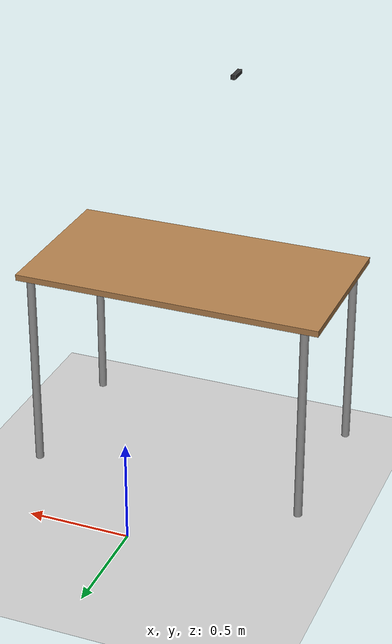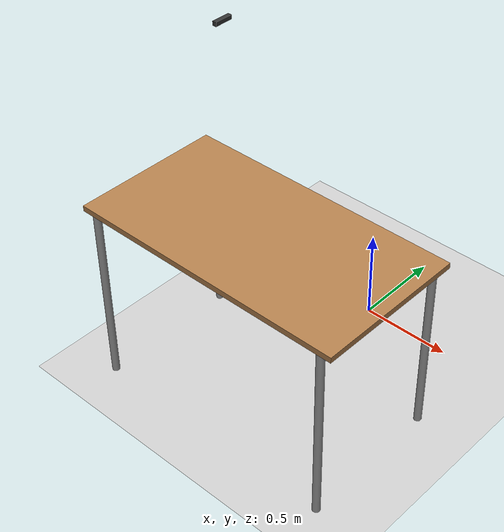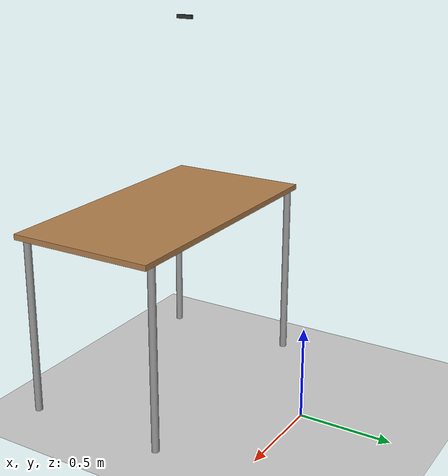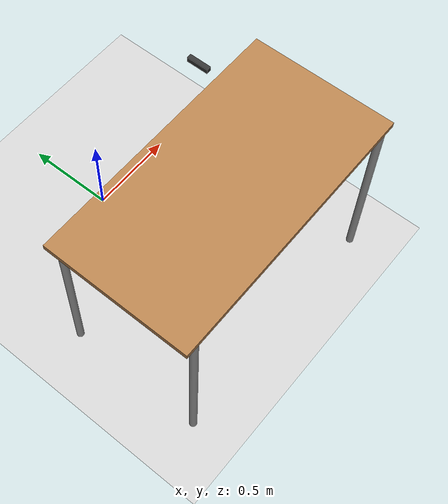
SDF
<?xml version="1.0" ?>
<sdf version="1.4">
  <world name="default">
    <include>
      <uri>model://ground_plane</uri>
    </include>
    <include>
      <uri>model://sun</uri>
    </include>
    <include>
      <uri>model://table</uri>
      <name>table</name>
      <pose>0.0 -0.84 0 0 0 0</pose>
    </include>

    <!-- RealSense D435i camera -->
    <model name="realsense_camera">
      <static>true</static>
      <pose>-0.2 -0.84 2.0 0 1.5708 0</pose>
      <link name="camera_link">
        <visual name="visual">
          <geometry>
            <box>
              <size>0.02 0.09 0.02</size>
            </box>
          </geometry>
          <material>
            <ambient>0.2 0.2 0.2 1</ambient>
            <diffuse>0.2 0.2 0.2 1</diffuse>
          </material>
        </visual>

        <!-- Depth Camera -->
        <sensor name="cameradepth" type="depth">
          <camera name="camera">
            <horizontal_fov>1.57</horizontal_fov>
            <image>
              <width>1280</width>
              <height>720</height>
            </image>
            <clip>
              <near>0.1</near>
              <far>100</far>
            </clip>
            <noise>
              <type>gaussian</type>
              <mean>0.0</mean>
              <stddev>0.100</stddev>
            </noise>
          </camera>
          <always_on>1</always_on>
          <update_rate>30</update_rate>
          <visualize>0</visualize>
        </sensor>

        <!-- Color Camera -->
        <sensor name="cameracolor" type="camera">
          <camera name="camera">
            <horizontal_fov>1.57</horizontal_fov>
            <image>
              <width>1280</width>
              <height>720</height>
              <format>RGB_INT8</format>
            </image>
            <clip>
              <near>0.1</near>
              <far>100</far>
            </clip>
            <noise>
              <type>gaussian</type>
              <mean>0.0</mean>
              <stddev>0.007</stddev>
            </noise>
          </camera>
          <always_on>1</always_on>
          <update_rate>30</update_rate>
          <visualize>1</visualize>
        </sensor>

        <!-- Left IR Camera -->
        <sensor name="cameraired1" type="camera">
          <camera name="camera">
            <horizontal_fov>1.57</horizontal_fov>
            <image>
              <width>1280</width>
              <height>720</height>
              <format>L_INT8</format>
            </image>
            <clip>
              <near>0.1</near>
              <far>100</far>
            </clip>
            <noise>
              <type>gaussian</type>
              <mean>0.0</mean>
              <stddev>0.05</stddev>
            </noise>
          </camera>
          <always_on>1</always_on>
          <update_rate>30</update_rate>
          <visualize>0</visualize>
        </sensor>

        <!-- Right IR Camera -->
        <sensor name="cameraired2" type="camera">
          <camera name="camera">
            <horizontal_fov>1.57</horizontal_fov>
            <image>
              <width>1280</width>
              <height>720</height>
              <format>L_INT8</format>
            </image>
            <clip>
              <near>0.1</near>
              <far>100</far>
            </clip>
            <noise>
              <type>gaussian</type>
              <mean>0.0</mean>
              <stddev>0.05</stddev>
            </noise>
          </camera>
          <always_on>1</always_on>
          <update_rate>30</update_rate>
          <visualize>0</visualize>
        </sensor>

        <!-- RealSense Plugin -->
        <plugin name="realsense_gazebo_camera" filename="librealsense_gazebo_plugin.so">
          <prefix>camera</prefix>
          <depthUpdateRate>30.0</depthUpdateRate>
          <colorUpdateRate>30.0</colorUpdateRate>
          <infraredUpdateRate>30.0</infraredUpdateRate>
          <depthTopicName>aligned_depth_to_color/image_raw</depthTopicName>
          <depthCameraInfoTopicName>depth/camera_info</depthCameraInfoTopicName>
          <colorTopicName>color/image_raw</colorTopicName>
          <colorCameraInfoTopicName>color/camera_info</colorCameraInfoTopicName>
          <infrared1TopicName>infra1/image_raw</infrared1TopicName>
          <infrared1CameraInfoTopicName>infra1/camera_info</infrared1CameraInfoTopicName>
          <infrared2TopicName>infra2/image_raw</infrared2TopicName>
          <infrared2CameraInfoTopicName>infra2/camera_info</infrared2CameraInfoTopicName>
          <colorOpticalframeName>camera_color_optical_frame</colorOpticalframeName>
          <depthOpticalframeName>camera_depth_optical_frame</depthOpticalframeName>
          <infrared1OpticalframeName>camera_left_ir_optical_frame</infrared1OpticalframeName>
          <infrared2OpticalframeName>camera_right_ir_optical_frame</infrared2OpticalframeName>
          <rangeMinDepth>0.3</rangeMinDepth>
          <rangeMaxDepth>3.0</rangeMaxDepth>
          <pointCloud>true</pointCloud>
          <pointCloudTopicName>depth/color/points</pointCloudTopicName>
          <pointCloudCutoff>0.3</pointCloudCutoff>
        </plugin>
      </link>
    </model>

    <physics type="ode">
      <max_step_size>0.001</max_step_size>
      <real_time_factor>1</real_time_factor>
      <real_time_update_rate>1000</real_time_update_rate>
      <gravity>0 0 0</gravity>
    </physics>

  </world>
</sdf>

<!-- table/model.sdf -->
<sdf version="1.5">
  <model name="table">
    <static>true</static>
    <link name="link">
      <collision name="surface">
        <pose>0 0 1.0 0 0 0</pose>
        <geometry>
          <box>
            <size>1.5 0.8 0.03</size>
          </box>
        </geometry>
        <surface>
          <friction>
            <ode>
              <mu>0.6</mu>
              <mu2>0.6</mu2>
            </ode>
          </friction>
        </surface>
      </collision>
      <visual name="visual1">
        <pose>0 0 1.0 0 0 0</pose>
        <geometry>
          <box>
            <size>1.5 0.8 0.03</size>
          </box>
        </geometry>
        <material>
          <script>
            <uri>model://media/materials/scripts/gazebo.material</uri>
            <name>Gazebo/Wood</name>
          </script>
        </material>
      </visual>
      <collision name="front_left_leg">
        <pose>0.68 0.38 0.5 0 0 0</pose>
        <geometry>
          <cylinder>
            <radius>0.02</radius>
            <length>1.0</length>
          </cylinder>
        </geometry>
      </collision>
      <visual name="front_left_leg">
        <pose>0.68 0.38 0.5 0 0 0</pose>
        <geometry>
          <cylinder>
            <radius>0.02</radius>
            <length>1.0</length>
          </cylinder>
        </geometry>
        <material>
          <script>
            <uri>model://media/materials/scripts/gazebo.material</uri>
            <name>Gazebo/Grey</name>
          </script>
        </material>
      </visual>
      <collision name="front_right_leg">
        <pose>0.68 -0.38 0.5 0 0 0</pose>
        <geometry>
          <cylinder>
            <radius>0.02</radius>
            <length>1.0</length>
          </cylinder>
        </geometry>
      </collision>
      <visual name="front_right_leg">
        <pose>0.68 -0.38 0.5 0 0 0</pose>
        <geometry>
          <cylinder>
            <radius>0.02</radius>
            <length>1.0</length>
          </cylinder>
        </geometry>
        <material>
          <script>
            <uri>model://media/materials/scripts/gazebo.material</uri>
            <name>Gazebo/Grey</name>
          </script>
        </material>
      </visual>
      <collision name="back_right_leg">
        <pose>-0.68 -0.38 0.5 0 0 0</pose>
        <geometry>
          <cylinder>
            <radius>0.02</radius>
            <length>1.0</length>
          </cylinder>
        </geometry>
      </collision>
      <visual name="back_right_leg">
        <pose>-0.68 -0.38 0.5 0 0 0</pose>
        <geometry>
          <cylinder>
            <radius>0.02</radius>
            <length>1.0</length>
          </cylinder>
        </geometry>
        <material>
          <script>
            <uri>model://media/materials/scripts/gazebo.material</uri>
            <name>Gazebo/Grey</name>
          </script>
        </material>
      </visual>
      <collision name="back_left_leg">
        <pose>-0.68 0.38 0.5 0 0 0</pose>
        <geometry>
          <cylinder>
            <radius>0.02</radius>
            <length>1.0</length>
          </cylinder>
        </geometry>
      </collision>
      <visual name="back_left_leg">
        <pose>-0.68 0.38 0.5 0 0 0</pose>
        <geometry>
          <cylinder>
            <radius>0.02</radius>
            <length>1.0</length>
          </cylinder>
        </geometry>
        <material>
          <script>
            <uri>model://media/materials/scripts/gazebo.material</uri>
            <name>Gazebo/Grey</name>
          </script>
        </material>
      </visual>
    </link>
  </model>
</sdf>
